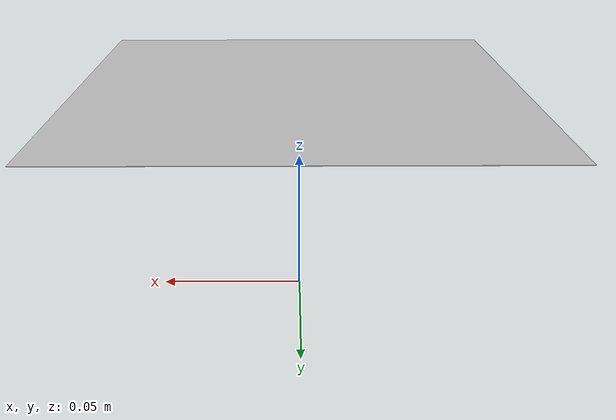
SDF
<?xml version="1.0" ?>
<sdf version="1.6">
  <model name="aruco_tag_1">
    <static>true</static>
    <link name="aruco_tag_link">
      <visual name="aruco_tag_visual">
        <geometry>
          <plane>
            <size>0.15 0.15</size> <!-- 15cm x 15cm tag -->
          </plane>
        </geometry>
        <material>
          <script>
            <uri>model://aruco_tag_1/scripts</uri>
            <name>tag36_11</name>
          </script>
        </material>
      </visual>
      <collision name="aruco_tag_collision">
        <geometry>
          <plane>
            <size>0.15 0.15</size>
          </plane>
        </geometry>
      </collision>
      <pose>0 0 0.075 0 0 0</pose> <!-- Raise the tag above ground -->
    </link>
  </model>
</sdf>
